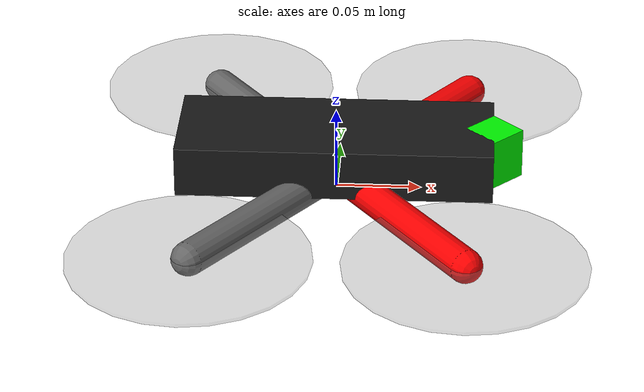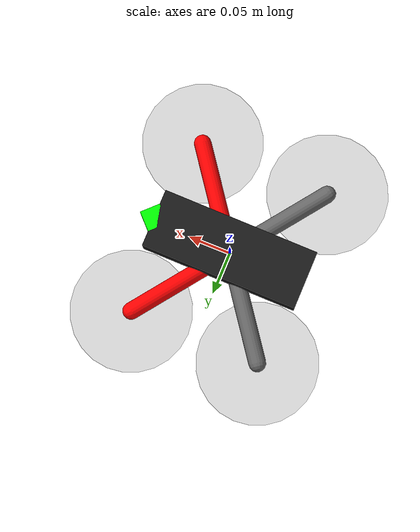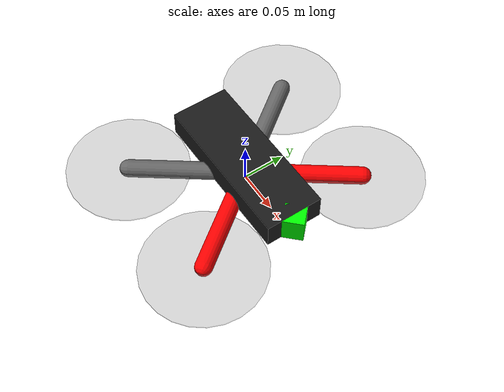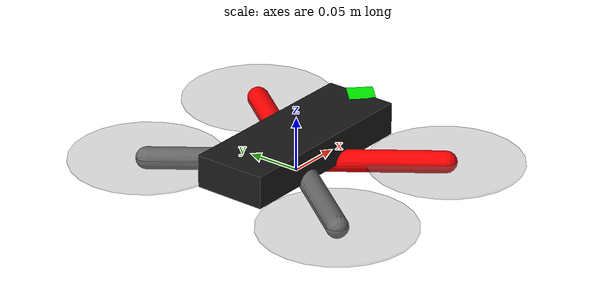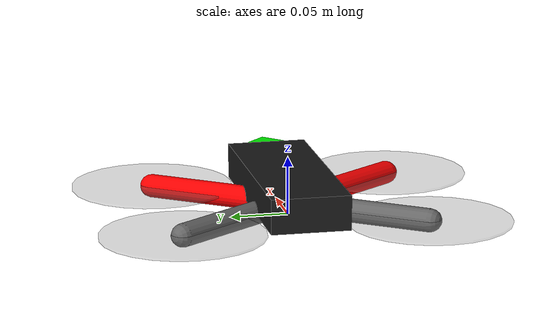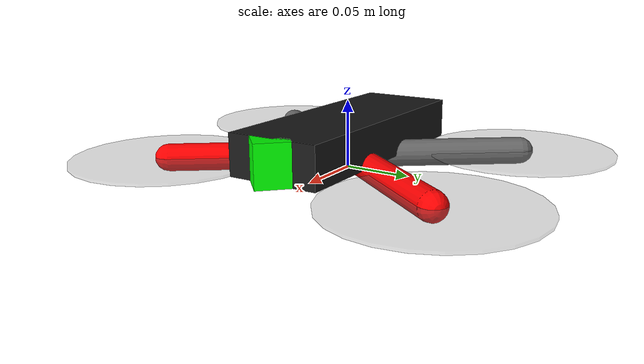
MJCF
<mujoco model="ZMR250">
  <default>
    <default class="rotor">
      <geom type="cylinder" size="0.07 0.001" rgba="0.5 0.5 0.5 0.3"/>
    </default>
    <default class="thrust">
      <velocity ctrlrange="0 1" kv="10"/>
    </default>
  </default>

  <worldbody>
    <body name="zmr250" pos="0 0 0.01">
      <freejoint/>

      <light name="overhead" pos="0 0 5" dir="0 0 -1"/>

      <!--Blackout Mini H-->

      <geom name="body" type="box" pos="0 0 0.015" size="0.0925 0.034 0.015" mass="0.6" rgba="0.1 0.1 0.1 1"/>
      <geom name="front" type="box" pos="0.0925 0 0.015" size="0.012 0.012 0.015" euler="0 0 45" rgba="0 1 0 1"/>

      <geom name="arm1" type="capsule" fromto="0 0 0 +0.0775 -0.105 0" size="0.01" rgba="1 0 0 1"/>
      <geom name="arm2" type="capsule" fromto="0 0 0 +0.0775 +0.105 0" size="0.01" rgba="1 0 0 1"/>
      <geom name="arm3" type="capsule" fromto="0 0 0 -0.0775 +0.105 0" size="0.01" rgba="0.4 0.4 0.4 1"/>
      <geom name="arm4" type="capsule" fromto="0 0 0 -0.0775 -0.105 0" size="0.01" rgba="0.4 0.4 0.4 1"/>

      <geom name="rotor1" class="rotor" pos="+0.0775 -0.105 0"/>
      <geom name="rotor2" class="rotor" pos="+0.0775 +0.105 0"/>
      <geom name="rotor3" class="rotor" pos="-0.0775 +0.105 0"/>
      <geom name="rotor4" class="rotor" pos="-0.0775 -0.105 0"/>

      <site name="thrust1" pos="+0.0775 -0.105 0"/>
      <site name="thrust2" pos="+0.0775 +0.105 0"/>
      <site name="thrust3" pos="-0.0775 +0.105 0"/>
      <site name="thrust4" pos="-0.0775 -0.105 0"/>

      <site name="imu" pos="0 0 0.02"/>

    </body>
  </worldbody>

  <actuator>
    <velocity name="rotor/1" class="thrust" site="thrust1" gear="0 0 1 0 0 -.0201"/>
    <velocity name="rotor/2" class="thrust" site="thrust2" gear="0 0 1 0 0  .0201"/>
    <velocity name="rotor/3" class="thrust" site="thrust3" gear="0 0 1 0 0 -.0201"/>
    <velocity name="rotor/4" class="thrust" site="thrust4" gear="0 0 1 0 0  .0201"/>
  </actuator>

  <sensor>
    <gyro name="body_gyro" site="imu"/>
    <accelerometer name="body_accel" site="imu"/>
    <magnetometer name="body_magnetometer" site="imu"/>
    <framequat name="body_quat" objtype="site" objname="imu"/>
    <framepos name="body_pos" objtype="site" objname="imu"/>
  </sensor>
</mujoco>
